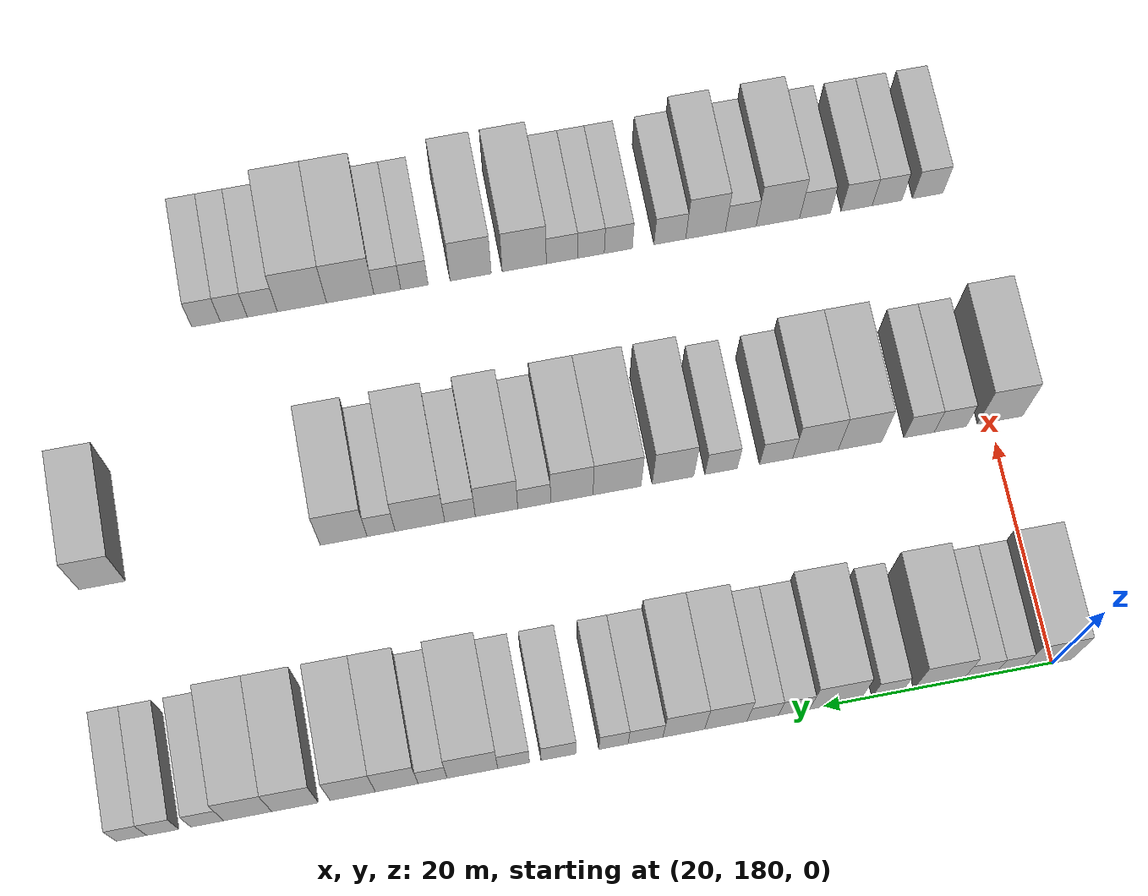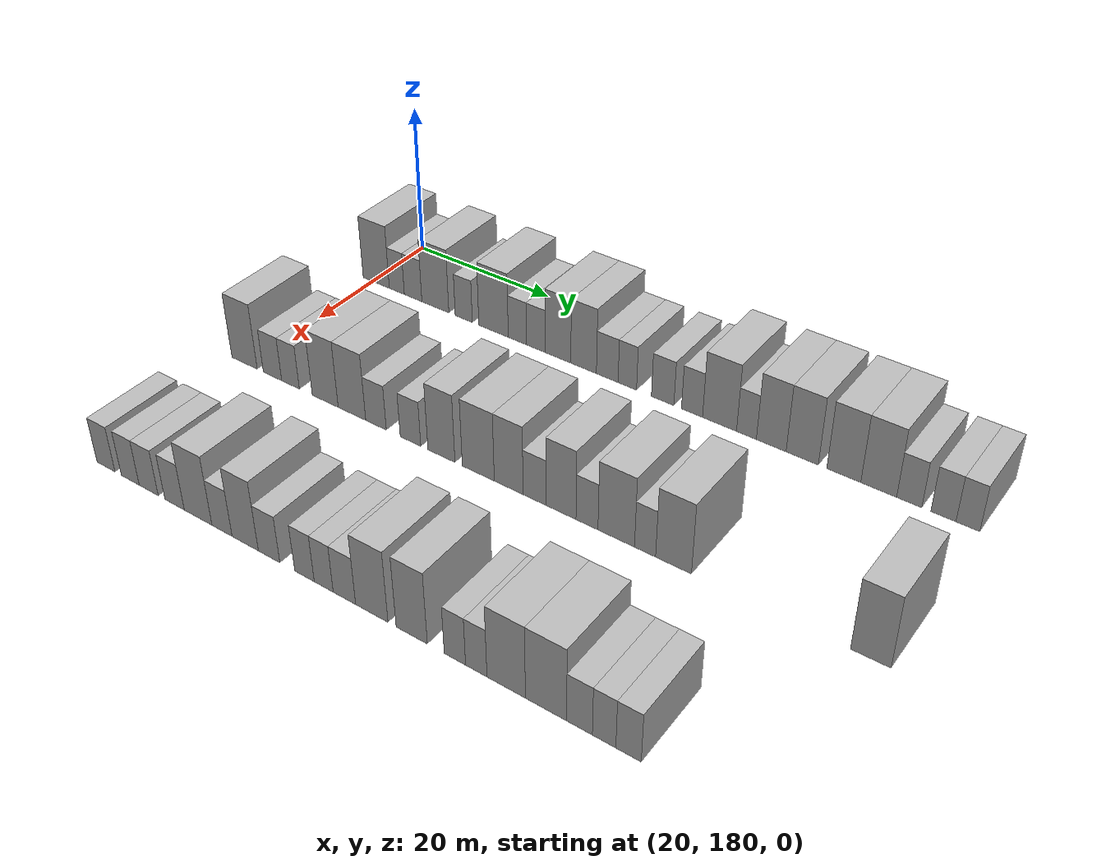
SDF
<sdf version="1.6">
 <world name="default">
  <model name="building_138">
   <static>1</static>
   <pose>25.0000 180.4626 0 0.000000 0.000000 0.000000</pose>
   <link name="link">
    <pose>0 0 4.50 0 0 0</pose>
    <collision name="collision"><geometry><box><size>10.0000 4.3268 9.0000</size></box></geometry></collision>
    <visual name="visual">
     <cast_shadows>0</cast_shadows>
     <geometry><box><size>10.0000 4.3268 9.0000</size></box></geometry>
     <material>
      <script>
       <uri>model://HANNAS_wall/materials/scripts</uri>
       <uri>model://HANNAS_wall/materials/textures</uri>
       <name>vrc/HANNAS_wall</name>
      </script>
     </material>
    </visual>
   </link>
  </model>
  <model name="building_139">
   <static>1</static>
   <pose>25.0000 183.8514 0 0.000000 0.000000 0.000000</pose>
   <link name="link">
    <pose>0 0 3.00 0 0 0</pose>
    <collision name="collision"><geometry><box><size>10.0000 2.4508 6.0000</size></box></geometry></collision>
    <visual name="visual">
     <cast_shadows>0</cast_shadows>
     <geometry><box><size>10.0000 2.4508 6.0000</size></box></geometry>
     <material>
      <script>
       <uri>model://HANNAS_wall/materials/scripts</uri>
       <uri>model://HANNAS_wall/materials/textures</uri>
       <name>vrc/HANNAS_wall</name>
      </script>
     </material>
    </visual>
   </link>
  </model>
  <model name="building_140">
   <static>1</static>
   <pose>25.0000 186.4915 0 0.000000 0.000000 0.000000</pose>
   <link name="link">
    <pose>0 0 3.00 0 0 0</pose>
    <collision name="collision"><geometry><box><size>10.0000 2.8293 6.0000</size></box></geometry></collision>
    <visual name="visual">
     <cast_shadows>0</cast_shadows>
     <geometry><box><size>10.0000 2.8293 6.0000</size></box></geometry>
     <material>
      <script>
       <uri>model://HANNAS_wall/materials/scripts</uri>
       <uri>model://HANNAS_wall/materials/textures</uri>
       <name>vrc/HANNAS_wall</name>
      </script>
     </material>
    </visual>
   </link>
  </model>
  <model name="building_141">
   <static>1</static>
   <pose>25.0000 190.0430 0 0.000000 0.000000 0.000000</pose>
   <link name="link">
    <pose>0 0 4.50 0 0 0</pose>
    <collision name="collision"><geometry><box><size>10.0000 4.2737 9.0000</size></box></geometry></collision>
    <visual name="visual">
     <cast_shadows>0</cast_shadows>
     <geometry><box><size>10.0000 4.2737 9.0000</size></box></geometry>
     <material>
      <script>
       <uri>model://HANNAS_wall/materials/scripts</uri>
       <uri>model://HANNAS_wall/materials/textures</uri>
       <name>vrc/HANNAS_wall</name>
      </script>
     </material>
    </visual>
   </link>
  </model>
  <model name="building_142">
   <static>1</static>
   <pose>25.0000 194.5023 0 0.000000 0.000000 0.000000</pose>
   <link name="link">
    <pose>0 0 3.00 0 0 0</pose>
    <collision name="collision"><geometry><box><size>10.0000 2.6449 6.0000</size></box></geometry></collision>
    <visual name="visual">
     <cast_shadows>0</cast_shadows>
     <geometry><box><size>10.0000 2.6449 6.0000</size></box></geometry>
     <material>
      <script>
       <uri>model://HANNAS_wall/materials/scripts</uri>
       <uri>model://HANNAS_wall/materials/textures</uri>
       <name>vrc/HANNAS_wall</name>
      </script>
     </material>
    </visual>
   </link>
  </model>
  <model name="building_143">
   <static>1</static>
   <pose>25.0000 199.0484 0 0.000000 0.000000 0.000000</pose>
   <link name="link">
    <pose>0 0 4.50 0 0 0</pose>
    <collision name="collision"><geometry><box><size>10.0000 4.4474 9.0000</size></box></geometry></collision>
    <visual name="visual">
     <cast_shadows>0</cast_shadows>
     <geometry><box><size>10.0000 4.4474 9.0000</size></box></geometry>
     <material>
      <script>
       <uri>model://HANNAS_wall/materials/scripts</uri>
       <uri>model://HANNAS_wall/materials/textures</uri>
       <name>vrc/HANNAS_wall</name>
      </script>
     </material>
    </visual>
   </link>
  </model>
  <model name="building_144">
   <static>1</static>
   <pose>25.0000 202.6178 0 0.000000 0.000000 0.000000</pose>
   <link name="link">
    <pose>0 0 3.00 0 0 0</pose>
    <collision name="collision"><geometry><box><size>10.0000 2.6914 6.0000</size></box></geometry></collision>
    <visual name="visual">
     <cast_shadows>0</cast_shadows>
     <geometry><box><size>10.0000 2.6914 6.0000</size></box></geometry>
     <material>
      <script>
       <uri>model://HANNAS_wall/materials/scripts</uri>
       <uri>model://HANNAS_wall/materials/textures</uri>
       <name>vrc/HANNAS_wall</name>
      </script>
     </material>
    </visual>
   </link>
  </model>
  <model name="building_145">
   <static>1</static>
   <pose>25.0000 205.3298 0 0.000000 0.000000 0.000000</pose>
   <link name="link">
    <pose>0 0 3.00 0 0 0</pose>
    <collision name="collision"><geometry><box><size>10.0000 2.7327 6.0000</size></box></geometry></collision>
    <visual name="visual">
     <cast_shadows>0</cast_shadows>
     <geometry><box><size>10.0000 2.7327 6.0000</size></box></geometry>
     <material>
      <script>
       <uri>model://HANNAS_wall/materials/scripts</uri>
       <uri>model://HANNAS_wall/materials/textures</uri>
       <name>vrc/HANNAS_wall</name>
      </script>
     </material>
    </visual>
   </link>
  </model>
  <model name="building_146">
   <static>1</static>
   <pose>25.0000 208.5402 0 0.000000 0.000000 0.000000</pose>
   <link name="link">
    <pose>0 0 4.50 0 0 0</pose>
    <collision name="collision"><geometry><box><size>10.0000 3.6880 9.0000</size></box></geometry></collision>
    <visual name="visual">
     <cast_shadows>0</cast_shadows>
     <geometry><box><size>10.0000 3.6880 9.0000</size></box></geometry>
     <material>
      <script>
       <uri>model://HANNAS_wall/materials/scripts</uri>
       <uri>model://HANNAS_wall/materials/textures</uri>
       <name>vrc/HANNAS_wall</name>
      </script>
     </material>
    </visual>
   </link>
  </model>
  <model name="building_147">
   <static>1</static>
   <pose>25.0000 212.1867 0 0.000000 0.000000 0.000000</pose>
   <link name="link">
    <pose>0 0 4.50 0 0 0</pose>
    <collision name="collision"><geometry><box><size>10.0000 3.6052 9.0000</size></box></geometry></collision>
    <visual name="visual">
     <cast_shadows>0</cast_shadows>
     <geometry><box><size>10.0000 3.6052 9.0000</size></box></geometry>
     <material>
      <script>
       <uri>model://HANNAS_wall/materials/scripts</uri>
       <uri>model://HANNAS_wall/materials/textures</uri>
       <name>vrc/HANNAS_wall</name>
      </script>
     </material>
    </visual>
   </link>
  </model>
  <model name="building_148">
   <static>1</static>
   <pose>25.0000 215.4862 0 0.000000 0.000000 0.000000</pose>
   <link name="link">
    <pose>0 0 3.00 0 0 0</pose>
    <collision name="collision"><geometry><box><size>10.0000 2.9936 6.0000</size></box></geometry></collision>
    <visual name="visual">
     <cast_shadows>0</cast_shadows>
     <geometry><box><size>10.0000 2.9936 6.0000</size></box></geometry>
     <material>
      <script>
       <uri>model://HANNAS_wall/materials/scripts</uri>
       <uri>model://HANNAS_wall/materials/textures</uri>
       <name>vrc/HANNAS_wall</name>
      </script>
     </material>
    </visual>
   </link>
  </model>
  <model name="building_149">
   <static>1</static>
   <pose>25.0000 218.2431 0 0.000000 0.000000 0.000000</pose>
   <link name="link">
    <pose>0 0 3.00 0 0 0</pose>
    <collision name="collision"><geometry><box><size>10.0000 2.5202 6.0000</size></box></geometry></collision>
    <visual name="visual">
     <cast_shadows>0</cast_shadows>
     <geometry><box><size>10.0000 2.5202 6.0000</size></box></geometry>
     <material>
      <script>
       <uri>model://HANNAS_wall/materials/scripts</uri>
       <uri>model://HANNAS_wall/materials/textures</uri>
       <name>vrc/HANNAS_wall</name>
      </script>
     </material>
    </visual>
   </link>
  </model>
  <model name="building_150">
   <static>1</static>
   <pose>25.0000 222.9930 0 0.000000 0.000000 0.000000</pose>
   <link name="link">
    <pose>0 0 3.00 0 0 0</pose>
    <collision name="collision"><geometry><box><size>10.0000 2.9796 6.0000</size></box></geometry></collision>
    <visual name="visual">
     <cast_shadows>0</cast_shadows>
     <geometry><box><size>10.0000 2.9796 6.0000</size></box></geometry>
     <material>
      <script>
       <uri>model://HANNAS_wall/materials/scripts</uri>
       <uri>model://HANNAS_wall/materials/textures</uri>
       <name>vrc/HANNAS_wall</name>
      </script>
     </material>
    </visual>
   </link>
  </model>
  <model name="building_151">
   <static>1</static>
   <pose>25.0000 226.8436 0 0.000000 0.000000 0.000000</pose>
   <link name="link">
    <pose>0 0 3.00 0 0 0</pose>
    <collision name="collision"><geometry><box><size>10.0000 2.7216 6.0000</size></box></geometry></collision>
    <visual name="visual">
     <cast_shadows>0</cast_shadows>
     <geometry><box><size>10.0000 2.7216 6.0000</size></box></geometry>
     <material>
      <script>
       <uri>model://HANNAS_wall/materials/scripts</uri>
       <uri>model://HANNAS_wall/materials/textures</uri>
       <name>vrc/HANNAS_wall</name>
      </script>
     </material>
    </visual>
   </link>
  </model>
  <model name="building_152">
   <static>1</static>
   <pose>25.0000 230.3694 0 0.000000 0.000000 0.000000</pose>
   <link name="link">
    <pose>0 0 4.50 0 0 0</pose>
    <collision name="collision"><geometry><box><size>10.0000 4.3301 9.0000</size></box></geometry></collision>
    <visual name="visual">
     <cast_shadows>0</cast_shadows>
     <geometry><box><size>10.0000 4.3301 9.0000</size></box></geometry>
     <material>
      <script>
       <uri>model://HANNAS_wall/materials/scripts</uri>
       <uri>model://HANNAS_wall/materials/textures</uri>
       <name>vrc/HANNAS_wall</name>
      </script>
     </material>
    </visual>
   </link>
  </model>
  <model name="building_153">
   <static>1</static>
   <pose>25.0000 233.7698 0 0.000000 0.000000 0.000000</pose>
   <link name="link">
    <pose>0 0 3.00 0 0 0</pose>
    <collision name="collision"><geometry><box><size>10.0000 2.4706 6.0000</size></box></geometry></collision>
    <visual name="visual">
     <cast_shadows>0</cast_shadows>
     <geometry><box><size>10.0000 2.4706 6.0000</size></box></geometry>
     <material>
      <script>
       <uri>model://HANNAS_wall/materials/scripts</uri>
       <uri>model://HANNAS_wall/materials/textures</uri>
       <name>vrc/HANNAS_wall</name>
      </script>
     </material>
    </visual>
   </link>
  </model>
  <model name="building_154">
   <static>1</static>
   <pose>25.0000 236.8262 0 0.000000 0.000000 0.000000</pose>
   <link name="link">
    <pose>0 0 4.50 0 0 0</pose>
    <collision name="collision"><geometry><box><size>10.0000 3.6421 9.0000</size></box></geometry></collision>
    <visual name="visual">
     <cast_shadows>0</cast_shadows>
     <geometry><box><size>10.0000 3.6421 9.0000</size></box></geometry>
     <material>
      <script>
       <uri>model://HANNAS_wall/materials/scripts</uri>
       <uri>model://HANNAS_wall/materials/textures</uri>
       <name>vrc/HANNAS_wall</name>
      </script>
     </material>
    </visual>
   </link>
  </model>
  <model name="building_155">
   <static>1</static>
   <pose>25.0000 240.5803 0 0.000000 0.000000 0.000000</pose>
   <link name="link">
    <pose>0 0 4.50 0 0 0</pose>
    <collision name="collision"><geometry><box><size>10.0000 3.8662 9.0000</size></box></geometry></collision>
    <visual name="visual">
     <cast_shadows>0</cast_shadows>
     <geometry><box><size>10.0000 3.8662 9.0000</size></box></geometry>
     <material>
      <script>
       <uri>model://HANNAS_wall/materials/scripts</uri>
       <uri>model://HANNAS_wall/materials/textures</uri>
       <name>vrc/HANNAS_wall</name>
      </script>
     </material>
    </visual>
   </link>
  </model>
  <model name="building_156">
   <static>1</static>
   <pose>25.0000 245.4917 0 0.000000 0.000000 0.000000</pose>
   <link name="link">
    <pose>0 0 4.50 0 0 0</pose>
    <collision name="collision"><geometry><box><size>10.0000 3.9565 9.0000</size></box></geometry></collision>
    <visual name="visual">
     <cast_shadows>0</cast_shadows>
     <geometry><box><size>10.0000 3.9565 9.0000</size></box></geometry>
     <material>
      <script>
       <uri>model://HANNAS_wall/materials/scripts</uri>
       <uri>model://HANNAS_wall/materials/textures</uri>
       <name>vrc/HANNAS_wall</name>
      </script>
     </material>
    </visual>
   </link>
  </model>
  <model name="building_157">
   <static>1</static>
   <pose>25.0000 249.5058 0 0.000000 0.000000 0.000000</pose>
   <link name="link">
    <pose>0 0 4.50 0 0 0</pose>
    <collision name="collision"><geometry><box><size>10.0000 4.0718 9.0000</size></box></geometry></collision>
    <visual name="visual">
     <cast_shadows>0</cast_shadows>
     <geometry><box><size>10.0000 4.0718 9.0000</size></box></geometry>
     <material>
      <script>
       <uri>model://HANNAS_wall/materials/scripts</uri>
       <uri>model://HANNAS_wall/materials/textures</uri>
       <name>vrc/HANNAS_wall</name>
      </script>
     </material>
    </visual>
   </link>
  </model>
  <model name="building_158">
   <static>1</static>
   <pose>25.0000 252.9383 0 0.000000 0.000000 0.000000</pose>
   <link name="link">
    <pose>0 0 3.00 0 0 0</pose>
    <collision name="collision"><geometry><box><size>10.0000 2.7933 6.0000</size></box></geometry></collision>
    <visual name="visual">
     <cast_shadows>0</cast_shadows>
     <geometry><box><size>10.0000 2.7933 6.0000</size></box></geometry>
     <material>
      <script>
       <uri>model://HANNAS_wall/materials/scripts</uri>
       <uri>model://HANNAS_wall/materials/textures</uri>
       <name>vrc/HANNAS_wall</name>
      </script>
     </material>
    </visual>
   </link>
  </model>
  <model name="building_159">
   <static>1</static>
   <pose>25.0000 256.6997 0 0.000000 0.000000 0.000000</pose>
   <link name="link">
    <pose>0 0 3.00 0 0 0</pose>
    <collision name="collision"><geometry><box><size>10.0000 2.7295 6.0000</size></box></geometry></collision>
    <visual name="visual">
     <cast_shadows>0</cast_shadows>
     <geometry><box><size>10.0000 2.7295 6.0000</size></box></geometry>
     <material>
      <script>
       <uri>model://HANNAS_wall/materials/scripts</uri>
       <uri>model://HANNAS_wall/materials/textures</uri>
       <name>vrc/HANNAS_wall</name>
      </script>
     </material>
    </visual>
   </link>
  </model>
  <model name="building_160">
   <static>1</static>
   <pose>25.0000 259.3420 0 0.000000 0.000000 0.000000</pose>
   <link name="link">
    <pose>0 0 3.00 0 0 0</pose>
    <collision name="collision"><geometry><box><size>10.0000 2.5552 6.0000</size></box></geometry></collision>
    <visual name="visual">
     <cast_shadows>0</cast_shadows>
     <geometry><box><size>10.0000 2.5552 6.0000</size></box></geometry>
     <material>
      <script>
       <uri>model://HANNAS_wall/materials/scripts</uri>
       <uri>model://HANNAS_wall/materials/textures</uri>
       <name>vrc/HANNAS_wall</name>
      </script>
     </material>
    </visual>
   </link>
  </model>
  <model name="building_330">
   <static>1</static>
   <pose>47.0000 179.1286 0 0.000000 0.000000 0.000000</pose>
   <link name="link">
    <pose>0 0 4.50 0 0 0</pose>
    <collision name="collision"><geometry><box><size>10.0000 4.1033 9.0000</size></box></geometry></collision>
    <visual name="visual">
     <cast_shadows>0</cast_shadows>
     <geometry><box><size>10.0000 4.1033 9.0000</size></box></geometry>
     <material>
      <script>
       <uri>model://HANNAS_wall/materials/scripts</uri>
       <uri>model://HANNAS_wall/materials/textures</uri>
       <name>vrc/HANNAS_wall</name>
      </script>
     </material>
    </visual>
   </link>
  </model>
  <model name="building_331">
   <static>1</static>
   <pose>47.0000 183.6304 0 0.000000 0.000000 0.000000</pose>
   <link name="link">
    <pose>0 0 3.00 0 0 0</pose>
    <collision name="collision"><geometry><box><size>10.0000 2.9002 6.0000</size></box></geometry></collision>
    <visual name="visual">
     <cast_shadows>0</cast_shadows>
     <geometry><box><size>10.0000 2.9002 6.0000</size></box></geometry>
     <material>
      <script>
       <uri>model://HANNAS_wall/materials/scripts</uri>
       <uri>model://HANNAS_wall/materials/textures</uri>
       <name>vrc/HANNAS_wall</name>
      </script>
     </material>
    </visual>
   </link>
  </model>
  <model name="building_332">
   <static>1</static>
   <pose>47.0000 186.4597 0 0.000000 0.000000 0.000000</pose>
   <link name="link">
    <pose>0 0 3.00 0 0 0</pose>
    <collision name="collision"><geometry><box><size>10.0000 2.7584 6.0000</size></box></geometry></collision>
    <visual name="visual">
     <cast_shadows>0</cast_shadows>
     <geometry><box><size>10.0000 2.7584 6.0000</size></box></geometry>
     <material>
      <script>
       <uri>model://HANNAS_wall/materials/scripts</uri>
       <uri>model://HANNAS_wall/materials/textures</uri>
       <name>vrc/HANNAS_wall</name>
      </script>
     </material>
    </visual>
   </link>
  </model>
  <model name="building_333">
   <static>1</static>
   <pose>47.0000 191.8033 0 0.000000 0.000000 0.000000</pose>
   <link name="link">
    <pose>0 0 4.50 0 0 0</pose>
    <collision name="collision"><geometry><box><size>10.0000 3.9289 9.0000</size></box></geometry></collision>
    <visual name="visual">
     <cast_shadows>0</cast_shadows>
     <geometry><box><size>10.0000 3.9289 9.0000</size></box></geometry>
     <material>
      <script>
       <uri>model://HANNAS_wall/materials/scripts</uri>
       <uri>model://HANNAS_wall/materials/textures</uri>
       <name>vrc/HANNAS_wall</name>
      </script>
     </material>
    </visual>
   </link>
  </model>
  <model name="building_334">
   <static>1</static>
   <pose>47.0000 195.8112 0 0.000000 0.000000 0.000000</pose>
   <link name="link">
    <pose>0 0 4.50 0 0 0</pose>
    <collision name="collision"><geometry><box><size>10.0000 4.0870 9.0000</size></box></geometry></collision>
    <visual name="visual">
     <cast_shadows>0</cast_shadows>
     <geometry><box><size>10.0000 4.0870 9.0000</size></box></geometry>
     <material>
      <script>
       <uri>model://HANNAS_wall/materials/scripts</uri>
       <uri>model://HANNAS_wall/materials/textures</uri>
       <name>vrc/HANNAS_wall</name>
      </script>
     </material>
    </visual>
   </link>
  </model>
  <model name="building_335">
   <static>1</static>
   <pose>47.0000 199.3496 0 0.000000 0.000000 0.000000</pose>
   <link name="link">
    <pose>0 0 3.00 0 0 0</pose>
    <collision name="collision"><geometry><box><size>10.0000 2.9899 6.0000</size></box></geometry></collision>
    <visual name="visual">
     <cast_shadows>0</cast_shadows>
     <geometry><box><size>10.0000 2.9899 6.0000</size></box></geometry>
     <material>
      <script>
       <uri>model://HANNAS_wall/materials/scripts</uri>
       <uri>model://HANNAS_wall/materials/textures</uri>
       <name>vrc/HANNAS_wall</name>
      </script>
     </material>
    </visual>
   </link>
  </model>
  <model name="building_336">
   <static>1</static>
   <pose>47.0000 204.2931 0 0.000000 0.000000 0.000000</pose>
   <link name="link">
    <pose>0 0 3.00 0 0 0</pose>
    <collision name="collision"><geometry><box><size>10.0000 2.8971 6.0000</size></box></geometry></collision>
    <visual name="visual">
     <cast_shadows>0</cast_shadows>
     <geometry><box><size>10.0000 2.8971 6.0000</size></box></geometry>
     <material>
      <script>
       <uri>model://HANNAS_wall/materials/scripts</uri>
       <uri>model://HANNAS_wall/materials/textures</uri>
       <name>vrc/HANNAS_wall</name>
      </script>
     </material>
    </visual>
   </link>
  </model>
  <model name="building_337">
   <static>1</static>
   <pose>47.0000 208.6003 0 0.000000 0.000000 0.000000</pose>
   <link name="link">
    <pose>0 0 4.50 0 0 0</pose>
    <collision name="collision"><geometry><box><size>10.0000 3.7173 9.0000</size></box></geometry></collision>
    <visual name="visual">
     <cast_shadows>0</cast_shadows>
     <geometry><box><size>10.0000 3.7173 9.0000</size></box></geometry>
     <material>
      <script>
       <uri>model://HANNAS_wall/materials/scripts</uri>
       <uri>model://HANNAS_wall/materials/textures</uri>
       <name>vrc/HANNAS_wall</name>
      </script>
     </material>
    </visual>
   </link>
  </model>
  <model name="building_338">
   <static>1</static>
   <pose>47.0000 213.5976 0 0.000000 0.000000 0.000000</pose>
   <link name="link">
    <pose>0 0 4.50 0 0 0</pose>
    <collision name="collision"><geometry><box><size>10.0000 4.2772 9.0000</size></box></geometry></collision>
    <visual name="visual">
     <cast_shadows>0</cast_shadows>
     <geometry><box><size>10.0000 4.2772 9.0000</size></box></geometry>
     <material>
      <script>
       <uri>model://HANNAS_wall/materials/scripts</uri>
       <uri>model://HANNAS_wall/materials/textures</uri>
       <name>vrc/HANNAS_wall</name>
      </script>
     </material>
    </visual>
   </link>
  </model>
  <model name="building_339">
   <static>1</static>
   <pose>47.0000 217.6192 0 0.000000 0.000000 0.000000</pose>
   <link name="link">
    <pose>0 0 4.50 0 0 0</pose>
    <collision name="collision"><geometry><box><size>10.0000 3.7661 9.0000</size></box></geometry></collision>
    <visual name="visual">
     <cast_shadows>0</cast_shadows>
     <geometry><box><size>10.0000 3.7661 9.0000</size></box></geometry>
     <material>
      <script>
       <uri>model://HANNAS_wall/materials/scripts</uri>
       <uri>model://HANNAS_wall/materials/textures</uri>
       <name>vrc/HANNAS_wall</name>
      </script>
     </material>
    </visual>
   </link>
  </model>
  <model name="building_340">
   <static>1</static>
   <pose>47.0000 220.9577 0 0.000000 0.000000 0.000000</pose>
   <link name="link">
    <pose>0 0 3.00 0 0 0</pose>
    <collision name="collision"><geometry><box><size>10.0000 2.9108 6.0000</size></box></geometry></collision>
    <visual name="visual">
     <cast_shadows>0</cast_shadows>
     <geometry><box><size>10.0000 2.9108 6.0000</size></box></geometry>
     <material>
      <script>
       <uri>model://HANNAS_wall/materials/scripts</uri>
       <uri>model://HANNAS_wall/materials/textures</uri>
       <name>vrc/HANNAS_wall</name>
      </script>
     </material>
    </visual>
   </link>
  </model>
  <model name="building_341">
   <static>1</static>
   <pose>47.0000 224.2919 0 0.000000 0.000000 0.000000</pose>
   <link name="link">
    <pose>0 0 4.50 0 0 0</pose>
    <collision name="collision"><geometry><box><size>10.0000 3.7575 9.0000</size></box></geometry></collision>
    <visual name="visual">
     <cast_shadows>0</cast_shadows>
     <geometry><box><size>10.0000 3.7575 9.0000</size></box></geometry>
     <material>
      <script>
       <uri>model://HANNAS_wall/materials/scripts</uri>
       <uri>model://HANNAS_wall/materials/textures</uri>
       <name>vrc/HANNAS_wall</name>
      </script>
     </material>
    </visual>
   </link>
  </model>
  <model name="building_342">
   <static>1</static>
   <pose>47.0000 227.5188 0 0.000000 0.000000 0.000000</pose>
   <link name="link">
    <pose>0 0 3.00 0 0 0</pose>
    <collision name="collision"><geometry><box><size>10.0000 2.6964 6.0000</size></box></geometry></collision>
    <visual name="visual">
     <cast_shadows>0</cast_shadows>
     <geometry><box><size>10.0000 2.6964 6.0000</size></box></geometry>
     <material>
      <script>
       <uri>model://HANNAS_wall/materials/scripts</uri>
       <uri>model://HANNAS_wall/materials/textures</uri>
       <name>vrc/HANNAS_wall</name>
      </script>
     </material>
    </visual>
   </link>
  </model>
  <model name="building_343">
   <static>1</static>
   <pose>47.0000 231.0587 0 0.000000 0.000000 0.000000</pose>
   <link name="link">
    <pose>0 0 4.50 0 0 0</pose>
    <collision name="collision"><geometry><box><size>10.0000 4.3833 9.0000</size></box></geometry></collision>
    <visual name="visual">
     <cast_shadows>0</cast_shadows>
     <geometry><box><size>10.0000 4.3833 9.0000</size></box></geometry>
     <material>
      <script>
       <uri>model://HANNAS_wall/materials/scripts</uri>
       <uri>model://HANNAS_wall/materials/textures</uri>
       <name>vrc/HANNAS_wall</name>
      </script>
     </material>
    </visual>
   </link>
  </model>
  <model name="building_344">
   <static>1</static>
   <pose>47.0000 234.4881 0 0.000000 0.000000 0.000000</pose>
   <link name="link">
    <pose>0 0 3.00 0 0 0</pose>
    <collision name="collision"><geometry><box><size>10.0000 2.4755 6.0000</size></box></geometry></collision>
    <visual name="visual">
     <cast_shadows>0</cast_shadows>
     <geometry><box><size>10.0000 2.4755 6.0000</size></box></geometry>
     <material>
      <script>
       <uri>model://HANNAS_wall/materials/scripts</uri>
       <uri>model://HANNAS_wall/materials/textures</uri>
       <name>vrc/HANNAS_wall</name>
      </script>
     </material>
    </visual>
   </link>
  </model>
  <model name="building_345">
   <static>1</static>
   <pose>47.0000 237.7882 0 0.000000 0.000000 0.000000</pose>
   <link name="link">
    <pose>0 0 4.50 0 0 0</pose>
    <collision name="collision"><geometry><box><size>10.0000 4.1248 9.0000</size></box></geometry></collision>
    <visual name="visual">
     <cast_shadows>0</cast_shadows>
     <geometry><box><size>10.0000 4.1248 9.0000</size></box></geometry>
     <material>
      <script>
       <uri>model://HANNAS_wall/materials/scripts</uri>
       <uri>model://HANNAS_wall/materials/textures</uri>
       <name>vrc/HANNAS_wall</name>
      </script>
     </material>
    </visual>
   </link>
  </model>
  <model name="building_346">
   <static>1</static>
   <pose>47.0000 258.9201 0 0.000000 0.000000 0.000000</pose>
   <link name="link">
    <pose>0 0 4.50 0 0 0</pose>
    <collision name="collision"><geometry><box><size>10.0000 4.0463 9.0000</size></box></geometry></collision>
    <visual name="visual">
     <cast_shadows>0</cast_shadows>
     <geometry><box><size>10.0000 4.0463 9.0000</size></box></geometry>
     <material>
      <script>
       <uri>model://HANNAS_wall/materials/scripts</uri>
       <uri>model://HANNAS_wall/materials/textures</uri>
       <name>vrc/HANNAS_wall</name>
      </script>
     </material>
    </visual>
   </link>
  </model>
  <model name="building_513">
   <static>1</static>
   <pose>69.0000 180.4357 0 0.000000 0.000000 0.000000</pose>
   <link name="link">
    <pose>0 0 3.00 0 0 0</pose>
    <collision name="collision"><geometry><box><size>10.0000 2.8303 6.0000</size></box></geometry></collision>
    <visual name="visual">
     <cast_shadows>0</cast_shadows>
     <geometry><box><size>10.0000 2.8303 6.0000</size></box></geometry>
     <material>
      <script>
       <uri>model://HANNAS_wall/materials/scripts</uri>
       <uri>model://HANNAS_wall/materials/textures</uri>
       <name>vrc/HANNAS_wall</name>
      </script>
     </material>
    </visual>
   </link>
  </model>
  <model name="building_514">
   <static>1</static>
   <pose>69.0000 184.2313 0 0.000000 0.000000 0.000000</pose>
   <link name="link">
    <pose>0 0 3.00 0 0 0</pose>
    <collision name="collision"><geometry><box><size>10.0000 2.7609 6.0000</size></box></geometry></collision>
    <visual name="visual">
     <cast_shadows>0</cast_shadows>
     <geometry><box><size>10.0000 2.7609 6.0000</size></box></geometry>
     <material>
      <script>
       <uri>model://HANNAS_wall/materials/scripts</uri>
       <uri>model://HANNAS_wall/materials/textures</uri>
       <name>vrc/HANNAS_wall</name>
      </script>
     </material>
    </visual>
   </link>
  </model>
  <model name="building_515">
   <static>1</static>
   <pose>69.0000 187.0546 0 0.000000 0.000000 0.000000</pose>
   <link name="link">
    <pose>0 0 3.00 0 0 0</pose>
    <collision name="collision"><geometry><box><size>10.0000 2.8857 6.0000</size></box></geometry></collision>
    <visual name="visual">
     <cast_shadows>0</cast_shadows>
     <geometry><box><size>10.0000 2.8857 6.0000</size></box></geometry>
     <material>
      <script>
       <uri>model://HANNAS_wall/materials/scripts</uri>
       <uri>model://HANNAS_wall/materials/textures</uri>
       <name>vrc/HANNAS_wall</name>
      </script>
     </material>
    </visual>
   </link>
  </model>
  <model name="building_516">
   <static>1</static>
   <pose>69.0000 190.9341 0 0.000000 0.000000 0.000000</pose>
   <link name="link">
    <pose>0 0 3.00 0 0 0</pose>
    <collision name="collision"><geometry><box><size>10.0000 2.8732 6.0000</size></box></geometry></collision>
    <visual name="visual">
     <cast_shadows>0</cast_shadows>
     <geometry><box><size>10.0000 2.8732 6.0000</size></box></geometry>
     <material>
      <script>
       <uri>model://HANNAS_wall/materials/scripts</uri>
       <uri>model://HANNAS_wall/materials/textures</uri>
       <name>vrc/HANNAS_wall</name>
      </script>
     </material>
    </visual>
   </link>
  </model>
  <model name="building_517">
   <static>1</static>
   <pose>69.0000 194.3803 0 0.000000 0.000000 0.000000</pose>
   <link name="link">
    <pose>0 0 4.50 0 0 0</pose>
    <collision name="collision"><geometry><box><size>10.0000 4.0192 9.0000</size></box></geometry></collision>
    <visual name="visual">
     <cast_shadows>0</cast_shadows>
     <geometry><box><size>10.0000 4.0192 9.0000</size></box></geometry>
     <material>
      <script>
       <uri>model://HANNAS_wall/materials/scripts</uri>
       <uri>model://HANNAS_wall/materials/textures</uri>
       <name>vrc/HANNAS_wall</name>
      </script>
     </material>
    </visual>
   </link>
  </model>
  <model name="building_518">
   <static>1</static>
   <pose>69.0000 197.8201 0 0.000000 0.000000 0.000000</pose>
   <link name="link">
    <pose>0 0 3.00 0 0 0</pose>
    <collision name="collision"><geometry><box><size>10.0000 2.8604 6.0000</size></box></geometry></collision>
    <visual name="visual">
     <cast_shadows>0</cast_shadows>
     <geometry><box><size>10.0000 2.8604 6.0000</size></box></geometry>
     <material>
      <script>
       <uri>model://HANNAS_wall/materials/scripts</uri>
       <uri>model://HANNAS_wall/materials/textures</uri>
       <name>vrc/HANNAS_wall</name>
      </script>
     </material>
    </visual>
   </link>
  </model>
  <model name="building_519">
   <static>1</static>
   <pose>69.0000 201.0785 0 0.000000 0.000000 0.000000</pose>
   <link name="link">
    <pose>0 0 4.50 0 0 0</pose>
    <collision name="collision"><geometry><box><size>10.0000 3.6564 9.0000</size></box></geometry></collision>
    <visual name="visual">
     <cast_shadows>0</cast_shadows>
     <geometry><box><size>10.0000 3.6564 9.0000</size></box></geometry>
     <material>
      <script>
       <uri>model://HANNAS_wall/materials/scripts</uri>
       <uri>model://HANNAS_wall/materials/textures</uri>
       <name>vrc/HANNAS_wall</name>
      </script>
     </material>
    </visual>
   </link>
  </model>
  <model name="building_520">
   <static>1</static>
   <pose>69.0000 204.3697 0 0.000000 0.000000 0.000000</pose>
   <link name="link">
    <pose>0 0 3.00 0 0 0</pose>
    <collision name="collision"><geometry><box><size>10.0000 2.9262 6.0000</size></box></geometry></collision>
    <visual name="visual">
     <cast_shadows>0</cast_shadows>
     <geometry><box><size>10.0000 2.9262 6.0000</size></box></geometry>
     <material>
      <script>
       <uri>model://HANNAS_wall/materials/scripts</uri>
       <uri>model://HANNAS_wall/materials/textures</uri>
       <name>vrc/HANNAS_wall</name>
      </script>
     </material>
    </visual>
   </link>
  </model>
  <model name="building_521">
   <static>1</static>
   <pose>69.0000 209.1192 0 0.000000 0.000000 0.000000</pose>
   <link name="link">
    <pose>0 0 3.00 0 0 0</pose>
    <collision name="collision"><geometry><box><size>10.0000 2.5728 6.0000</size></box></geometry></collision>
    <visual name="visual">
     <cast_shadows>0</cast_shadows>
     <geometry><box><size>10.0000 2.5728 6.0000</size></box></geometry>
     <material>
      <script>
       <uri>model://HANNAS_wall/materials/scripts</uri>
       <uri>model://HANNAS_wall/materials/textures</uri>
       <name>vrc/HANNAS_wall</name>
      </script>
     </material>
    </visual>
   </link>
  </model>
  <model name="building_522">
   <static>1</static>
   <pose>69.0000 211.6398 0 0.000000 0.000000 0.000000</pose>
   <link name="link">
    <pose>0 0 3.00 0 0 0</pose>
    <collision name="collision"><geometry><box><size>10.0000 2.4684 6.0000</size></box></geometry></collision>
    <visual name="visual">
     <cast_shadows>0</cast_shadows>
     <geometry><box><size>10.0000 2.4684 6.0000</size></box></geometry>
     <material>
      <script>
       <uri>model://HANNAS_wall/materials/scripts</uri>
       <uri>model://HANNAS_wall/materials/textures</uri>
       <name>vrc/HANNAS_wall</name>
      </script>
     </material>
    </visual>
   </link>
  </model>
  <model name="building_523">
   <static>1</static>
   <pose>69.0000 214.3041 0 0.000000 0.000000 0.000000</pose>
   <link name="link">
    <pose>0 0 3.00 0 0 0</pose>
    <collision name="collision"><geometry><box><size>10.0000 2.8602 6.0000</size></box></geometry></collision>
    <visual name="visual">
     <cast_shadows>0</cast_shadows>
     <geometry><box><size>10.0000 2.8602 6.0000</size></box></geometry>
     <material>
      <script>
       <uri>model://HANNAS_wall/materials/scripts</uri>
       <uri>model://HANNAS_wall/materials/textures</uri>
       <name>vrc/HANNAS_wall</name>
      </script>
     </material>
    </visual>
   </link>
  </model>
  <model name="building_524">
   <static>1</static>
   <pose>69.0000 217.7526 0 0.000000 0.000000 0.000000</pose>
   <link name="link">
    <pose>0 0 4.50 0 0 0</pose>
    <collision name="collision"><geometry><box><size>10.0000 4.0367 9.0000</size></box></geometry></collision>
    <visual name="visual">
     <cast_shadows>0</cast_shadows>
     <geometry><box><size>10.0000 4.0367 9.0000</size></box></geometry>
     <material>
      <script>
       <uri>model://HANNAS_wall/materials/scripts</uri>
       <uri>model://HANNAS_wall/materials/textures</uri>
       <name>vrc/HANNAS_wall</name>
      </script>
     </material>
    </visual>
   </link>
  </model>
  <model name="building_525">
   <static>1</static>
   <pose>69.0000 222.6521 0 0.000000 0.000000 0.000000</pose>
   <link name="link">
    <pose>0 0 4.50 0 0 0</pose>
    <collision name="collision"><geometry><box><size>10.0000 3.7621 9.0000</size></box></geometry></collision>
    <visual name="visual">
     <cast_shadows>0</cast_shadows>
     <geometry><box><size>10.0000 3.7621 9.0000</size></box></geometry>
     <material>
      <script>
       <uri>model://HANNAS_wall/materials/scripts</uri>
       <uri>model://HANNAS_wall/materials/textures</uri>
       <name>vrc/HANNAS_wall</name>
      </script>
     </material>
    </visual>
   </link>
  </model>
  <model name="building_526">
   <static>1</static>
   <pose>69.0000 227.7760 0 0.000000 0.000000 0.000000</pose>
   <link name="link">
    <pose>0 0 3.00 0 0 0</pose>
    <collision name="collision"><geometry><box><size>10.0000 2.4857 6.0000</size></box></geometry></collision>
    <visual name="visual">
     <cast_shadows>0</cast_shadows>
     <geometry><box><size>10.0000 2.4857 6.0000</size></box></geometry>
     <material>
      <script>
       <uri>model://HANNAS_wall/materials/scripts</uri>
       <uri>model://HANNAS_wall/materials/textures</uri>
       <name>vrc/HANNAS_wall</name>
      </script>
     </material>
    </visual>
   </link>
  </model>
  <model name="building_527">
   <static>1</static>
   <pose>69.0000 230.2414 0 0.000000 0.000000 0.000000</pose>
   <link name="link">
    <pose>0 0 3.00 0 0 0</pose>
    <collision name="collision"><geometry><box><size>10.0000 2.4452 6.0000</size></box></geometry></collision>
    <visual name="visual">
     <cast_shadows>0</cast_shadows>
     <geometry><box><size>10.0000 2.4452 6.0000</size></box></geometry>
     <material>
      <script>
       <uri>model://HANNAS_wall/materials/scripts</uri>
       <uri>model://HANNAS_wall/materials/textures</uri>
       <name>vrc/HANNAS_wall</name>
      </script>
     </material>
    </visual>
   </link>
  </model>
  <model name="building_528">
   <static>1</static>
   <pose>69.0000 233.6178 0 0.000000 0.000000 0.000000</pose>
   <link name="link">
    <pose>0 0 4.50 0 0 0</pose>
    <collision name="collision"><geometry><box><size>10.0000 4.3077 9.0000</size></box></geometry></collision>
    <visual name="visual">
     <cast_shadows>0</cast_shadows>
     <geometry><box><size>10.0000 4.3077 9.0000</size></box></geometry>
     <material>
      <script>
       <uri>model://HANNAS_wall/materials/scripts</uri>
       <uri>model://HANNAS_wall/materials/textures</uri>
       <name>vrc/HANNAS_wall</name>
      </script>
     </material>
    </visual>
   </link>
  </model>
  <model name="building_529">
   <static>1</static>
   <pose>69.0000 237.9987 0 0.000000 0.000000 0.000000</pose>
   <link name="link">
    <pose>0 0 4.50 0 0 0</pose>
    <collision name="collision"><geometry><box><size>10.0000 4.4541 9.0000</size></box></geometry></collision>
    <visual name="visual">
     <cast_shadows>0</cast_shadows>
     <geometry><box><size>10.0000 4.4541 9.0000</size></box></geometry>
     <material>
      <script>
       <uri>model://HANNAS_wall/materials/scripts</uri>
       <uri>model://HANNAS_wall/materials/textures</uri>
       <name>vrc/HANNAS_wall</name>
      </script>
     </material>
    </visual>
   </link>
  </model>
  <model name="building_530">
   <static>1</static>
   <pose>69.0000 241.5864 0 0.000000 0.000000 0.000000</pose>
   <link name="link">
    <pose>0 0 3.00 0 0 0</pose>
    <collision name="collision"><geometry><box><size>10.0000 2.7213 6.0000</size></box></geometry></collision>
    <visual name="visual">
     <cast_shadows>0</cast_shadows>
     <geometry><box><size>10.0000 2.7213 6.0000</size></box></geometry>
     <material>
      <script>
       <uri>model://HANNAS_wall/materials/scripts</uri>
       <uri>model://HANNAS_wall/materials/textures</uri>
       <name>vrc/HANNAS_wall</name>
      </script>
     </material>
    </visual>
   </link>
  </model>
  <model name="building_531">
   <static>1</static>
   <pose>69.0000 244.1612 0 0.000000 0.000000 0.000000</pose>
   <link name="link">
    <pose>0 0 3.00 0 0 0</pose>
    <collision name="collision"><geometry><box><size>10.0000 2.4282 6.0000</size></box></geometry></collision>
    <visual name="visual">
     <cast_shadows>0</cast_shadows>
     <geometry><box><size>10.0000 2.4282 6.0000</size></box></geometry>
     <material>
      <script>
       <uri>model://HANNAS_wall/materials/scripts</uri>
       <uri>model://HANNAS_wall/materials/textures</uri>
       <name>vrc/HANNAS_wall</name>
      </script>
     </material>
    </visual>
   </link>
  </model>
  <model name="building_532">
   <static>1</static>
   <pose>69.0000 246.6705 0 0.000000 0.000000 0.000000</pose>
   <link name="link">
    <pose>0 0 3.00 0 0 0</pose>
    <collision name="collision"><geometry><box><size>10.0000 2.5905 6.0000</size></box></geometry></collision>
    <visual name="visual">
     <cast_shadows>0</cast_shadows>
     <geometry><box><size>10.0000 2.5905 6.0000</size></box></geometry>
     <material>
      <script>
       <uri>model://HANNAS_wall/materials/scripts</uri>
       <uri>model://HANNAS_wall/materials/textures</uri>
       <name>vrc/HANNAS_wall</name>
      </script>
     </material>
    </visual>
   </link>
  </model>
 </world>
</sdf>
